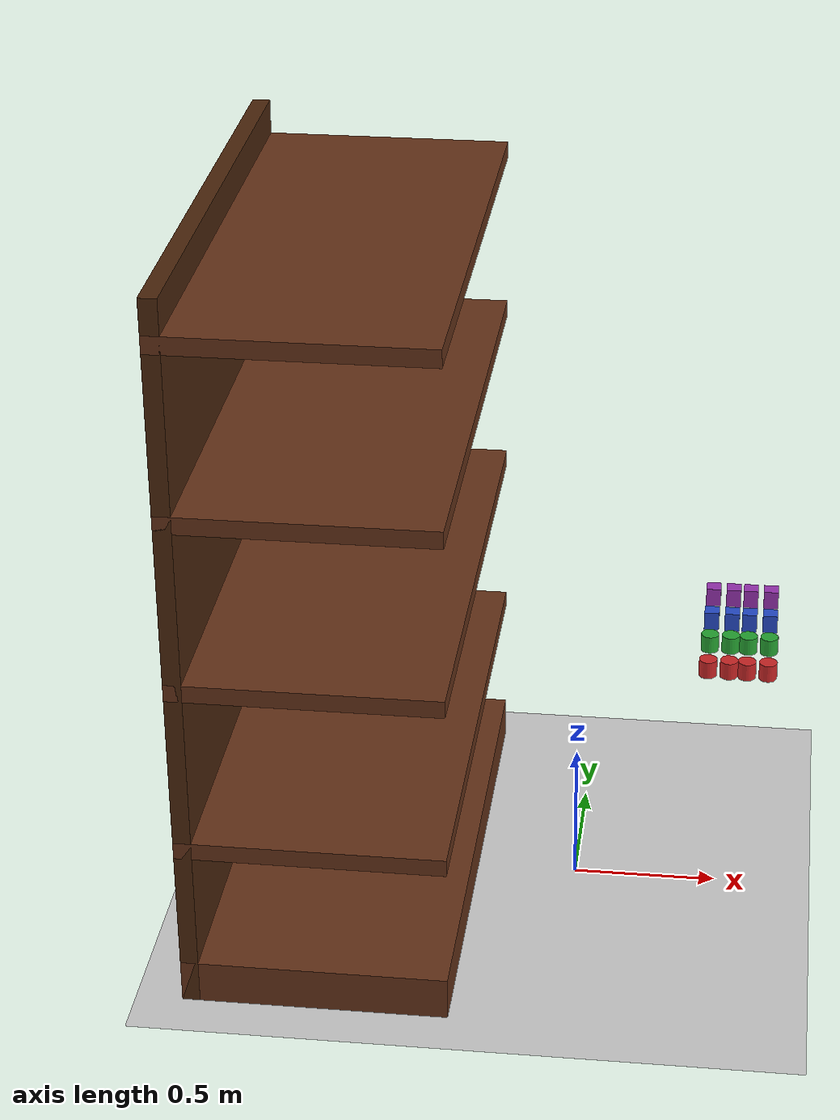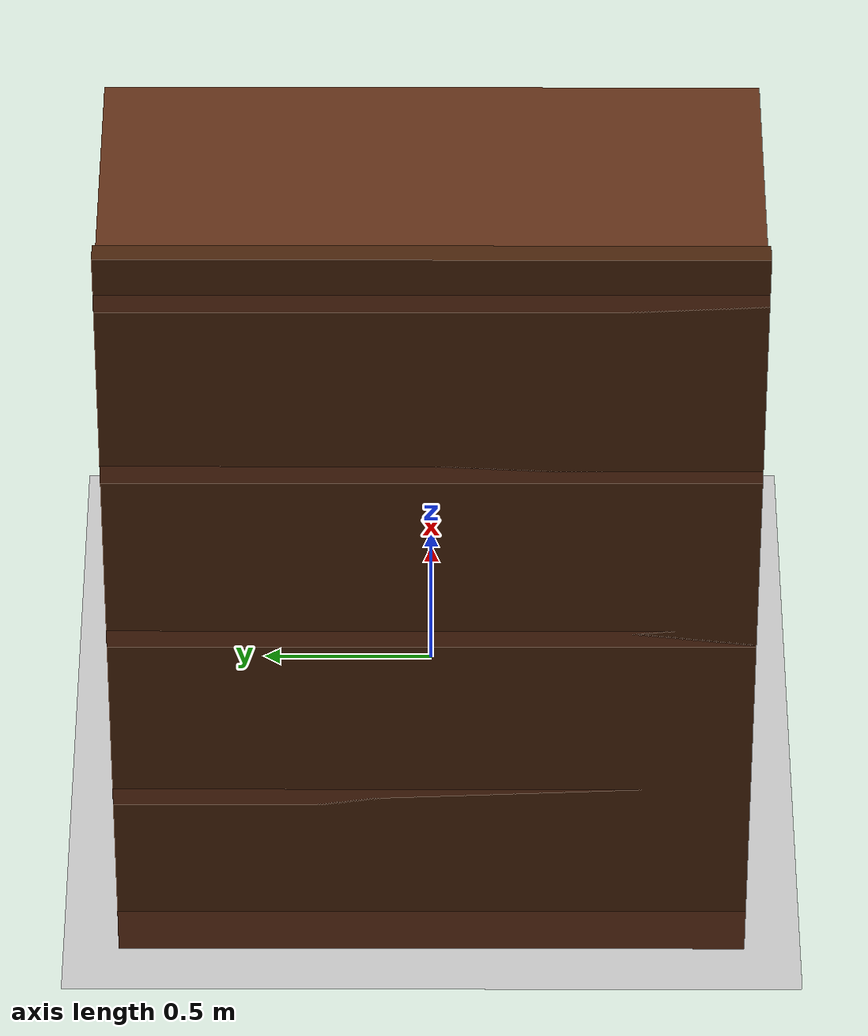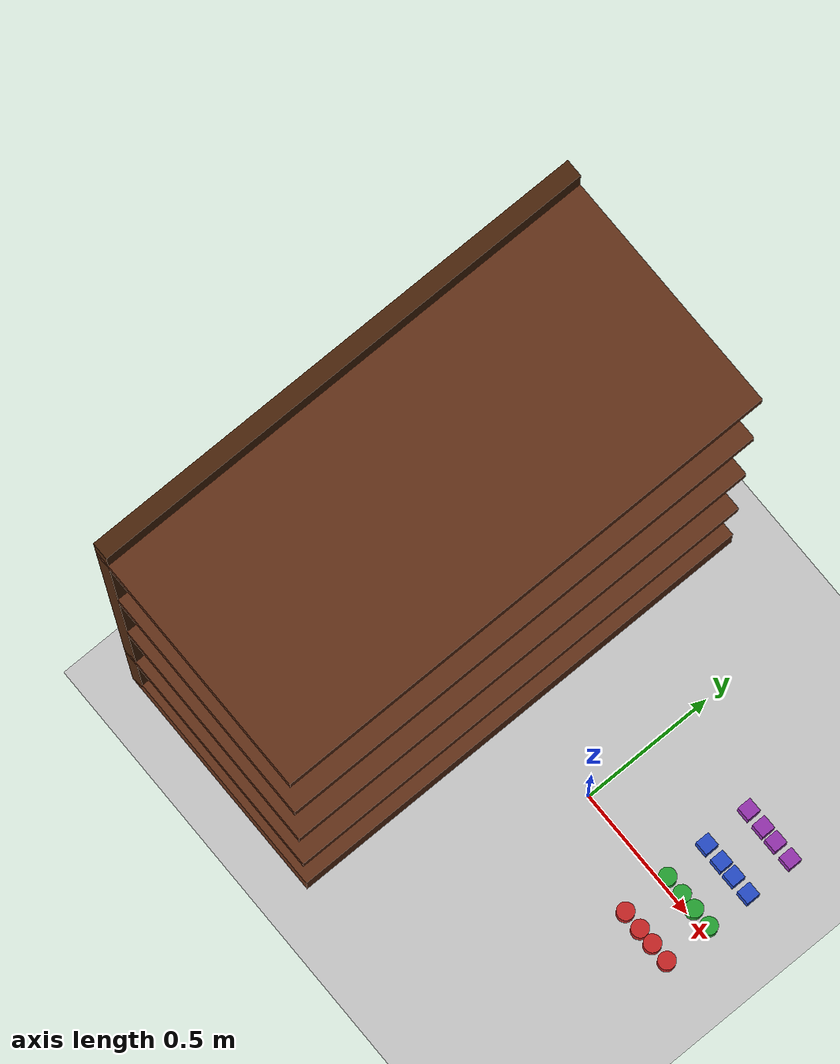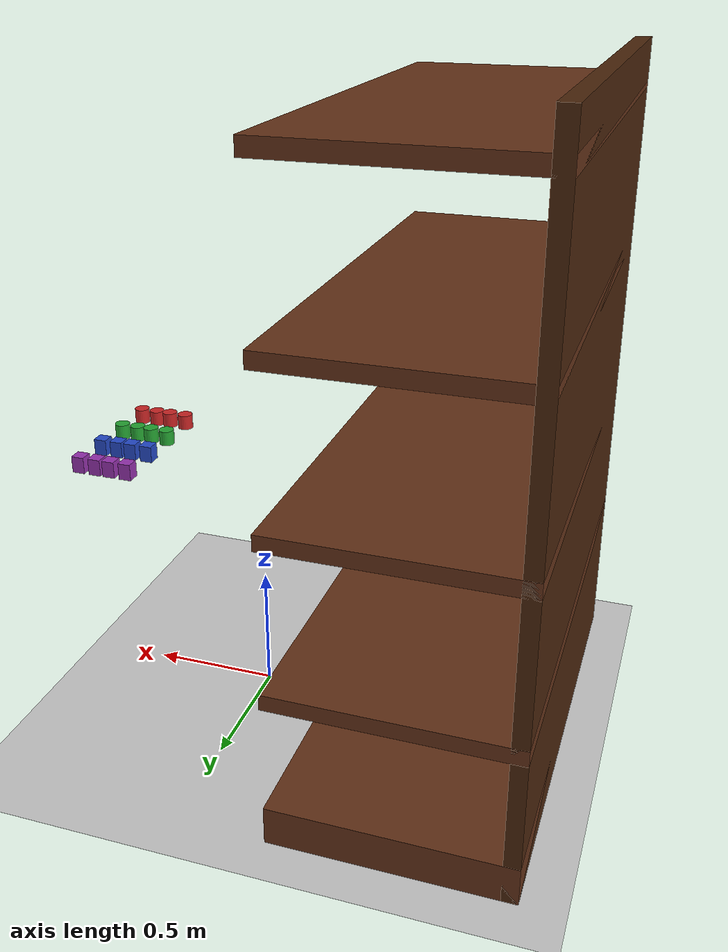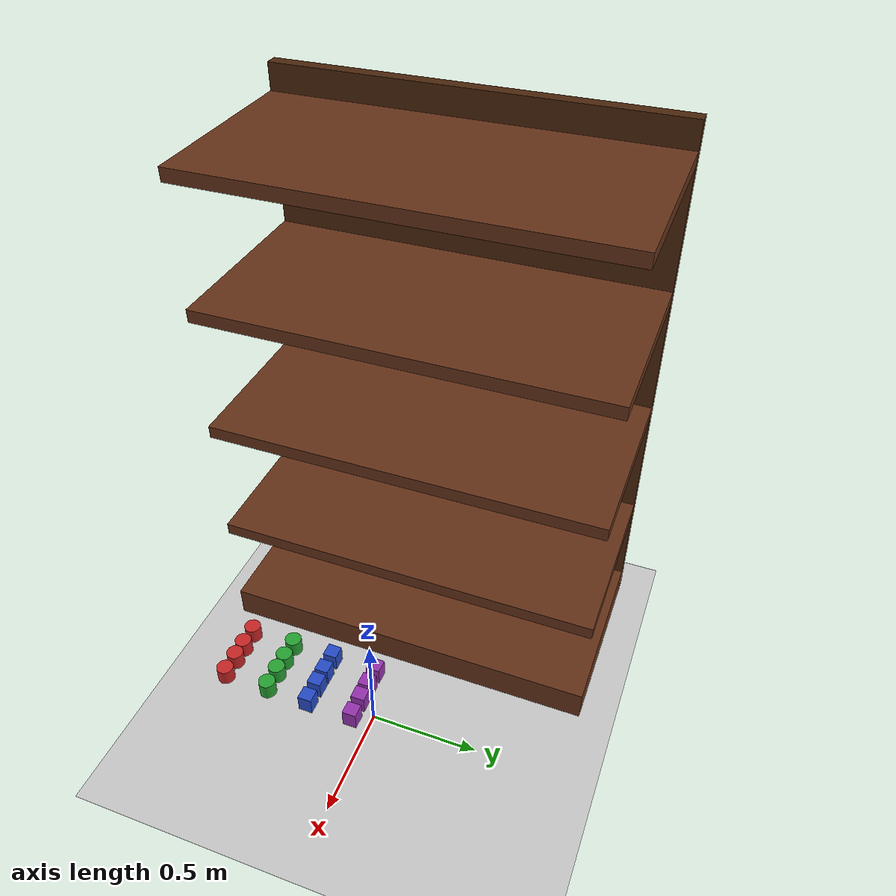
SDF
<sdf version="1.7">
 <world name="default">
  <light name="sun" type="directional">
   <pose>0 0 10 0 -0 0</pose>
   <diffuse>0.8 0.8 0.8 1</diffuse>
   <specular>0.2 0.2 0.2 1</specular>
   <attenuation>
    <range>1000</range>
    <constant>0.9</constant>
    <linear>0.01</linear>
    <quadratic>0.001</quadratic>
   </attenuation>
   <direction>-0.5 0.1 -0.9</direction>
  </light>
  <model name="ground_plane">
   <static>1</static>
   <link name="link">
    <collision name="collision">
     <geometry><plane><normal>0 0 1</normal><size>100 100</size></plane></geometry>
     <surface>
      <contact><collide_bitmask>65535</collide_bitmask></contact>
      <friction><ode><mu>100</mu><mu2>50</mu2></ode></friction>
     </surface>
    </collision>
    <visual name="visual">
     <cast_shadows>0</cast_shadows>
     <geometry><plane><normal>0 0 1</normal><size>100 100</size></plane></geometry>
     <material>
      <script><uri>file://media/materials/scripts/gazebo.material</uri><name>Gazebo/Grey</name></script>
     </material>
    </visual>
   </link>
  </model>
  <gravity>0 0 -9.8</gravity>
  <magnetic_field>6e-06 2.3e-05 -4.2e-05</magnetic_field>
  <atmosphere type="adiabatic"/>
  <physics name="default_physics" default="0" type="ode">
   <max_step_size>0.001</max_step_size>
   <real_time_factor>1</real_time_factor>
   <real_time_update_rate>1000</real_time_update_rate>
  </physics>
  <scene><ambient>0.4 0.4 0.4 1</ambient><background>0.7 0.7 0.7 1</background><shadows>1</shadows></scene>
  <spherical_coordinates>
   <surface_model>EARTH_WGS84</surface_model>
   <latitude_deg>0</latitude_deg>
   <longitude_deg>0</longitude_deg>
   <elevation>0</elevation>
   <heading_deg>0</heading_deg>
  </spherical_coordinates>
  <plugin name="gazebo_link_attacher" filename="libgazebo_link_attacher.so"/>
  <model name="red_cylinder_1">
   <link name="red_cylinder_1">
    <inertial>
     <mass>0.01</mass>
     <inertia><ixx>0</ixx><ixy>0</ixy><ixz>0</ixz><iyy>0</iyy><iyz>0</iyz><izz>0</izz></inertia>
    </inertial>
    <collision name="red_cylinder_1_collision">
     <geometry><cylinder><radius>0.03</radius><length>0.06</length></cylinder></geometry>
    </collision>
    <visual name="red_cylinder_1_visual">
     <geometry><cylinder><radius>0.03</radius><length>0.06</length></cylinder></geometry>
     <material>
      <script><name>Gazebo/Red</name><uri>file://media/materials/scripts/gazebo.material</uri></script>
     </material>
    </visual>
   </link>
   <pose>0.45 -0.25 1.03 0 -0 0</pose>
  </model>
  <model name="red_cylinder_2">
   <link name="red_cylinder_2">
    <inertial>
     <mass>0.01</mass>
     <inertia><ixx>0</ixx><ixy>0</ixy><ixz>0</ixz><iyy>0</iyy><iyz>0</iyz><izz>0</izz></inertia>
    </inertial>
    <collision name="red_cylinder_2_collision">
     <geometry><cylinder><radius>0.03</radius><length>0.06</length></cylinder></geometry>
    </collision>
    <visual name="red_cylinder_2_visual">
     <geometry><cylinder><radius>0.03</radius><length>0.06</length></cylinder></geometry>
     <material>
      <script><name>Gazebo/Red</name><uri>file://media/materials/scripts/gazebo.material</uri></script>
     </material>
    </visual>
   </link>
   <pose>0.52 -0.25 1.03 0 -0 0</pose>
  </model>
  <model name="red_cylinder_3">
   <link name="red_cylinder_3">
    <inertial>
     <mass>0.01</mass>
     <inertia><ixx>0</ixx><ixy>0</ixy><ixz>0</ixz><iyy>0</iyy><iyz>0</iyz><izz>0</izz></inertia>
    </inertial>
    <collision name="red_cylinder_3_collision">
     <geometry><cylinder><radius>0.03</radius><length>0.06</length></cylinder></geometry>
    </collision>
    <visual name="red_cylinder_3_visual">
     <geometry><cylinder><radius>0.03</radius><length>0.06</length></cylinder></geometry>
     <material>
      <script><name>Gazebo/Red</name><uri>file://media/materials/scripts/gazebo.material</uri></script>
     </material>
    </visual>
   </link>
   <pose>0.58 -0.25 1.03 0 -0 0</pose>
  </model>
  <model name="red_cylinder_4">
   <link name="red_cylinder_4">
    <inertial>
     <mass>0.01</mass>
     <inertia><ixx>0</ixx><ixy>0</ixy><ixz>0</ixz><iyy>0</iyy><iyz>0</iyz><izz>0</izz></inertia>
    </inertial>
    <collision name="red_cylinder_4_collision">
     <geometry><cylinder><radius>0.03</radius><length>0.06</length></cylinder></geometry>
    </collision>
    <visual name="red_cylinder_4_visual">
     <geometry><cylinder><radius>0.03</radius><length>0.06</length></cylinder></geometry>
     <material>
      <script><name>Gazebo/Red</name><uri>file://media/materials/scripts/gazebo.material</uri></script>
     </material>
    </visual>
   </link>
   <pose>0.65 -0.25 1.03 0 -0 0</pose>
  </model>
  <model name="green_cylinder_1">
   <link name="green_cylinder_1">
    <inertial>
     <mass>0.01</mass>
     <inertia><ixx>0</ixx><ixy>0</ixy><ixz>0</ixz><iyy>0</iyy><iyz>0</iyz><izz>0</izz></inertia>
    </inertial>
    <collision name="green_cylinder_1_collision">
     <geometry><cylinder><radius>0.03</radius><length>0.06</length></cylinder></geometry>
    </collision>
    <visual name="green_cylinder_1_visual">
     <geometry><cylinder><radius>0.03</radius><length>0.06</length></cylinder></geometry>
     <material>
      <script><name>Gazebo/Green</name><uri>file://media/materials/scripts/gazebo.material</uri></script>
     </material>
    </visual>
   </link>
   <pose>0.45 -0.08 1.03 0 -0 0</pose>
  </model>
  <model name="green_cylinder_2">
   <link name="green_cylinder_2">
    <inertial>
     <mass>0.01</mass>
     <inertia><ixx>0</ixx><ixy>0</ixy><ixz>0</ixz><iyy>0</iyy><iyz>0</iyz><izz>0</izz></inertia>
    </inertial>
    <collision name="green_cylinder_2_collision">
     <geometry><cylinder><radius>0.03</radius><length>0.06</length></cylinder></geometry>
    </collision>
    <visual name="green_cylinder_2_visual">
     <geometry><cylinder><radius>0.03</radius><length>0.06</length></cylinder></geometry>
     <material>
      <script><name>Gazebo/Green</name><uri>file://media/materials/scripts/gazebo.material</uri></script>
     </material>
    </visual>
   </link>
   <pose>0.58 -0.08 1.03 0 -0 0</pose>
  </model>
  <model name="green_cylinder_3">
   <link name="green_cylinder_3">
    <inertial>
     <mass>0.01</mass>
     <inertia><ixx>0</ixx><ixy>0</ixy><ixz>0</ixz><iyy>0</iyy><iyz>0</iyz><izz>0</izz></inertia>
    </inertial>
    <collision name="green_cylinder_3_collision">
     <geometry><cylinder><radius>0.03</radius><length>0.06</length></cylinder></geometry>
    </collision>
    <visual name="green_cylinder_3_visual">
     <geometry><cylinder><radius>0.03</radius><length>0.06</length></cylinder></geometry>
     <material>
      <script><name>Gazebo/Green</name><uri>file://media/materials/scripts/gazebo.material</uri></script>
     </material>
    </visual>
   </link>
   <pose>0.52 -0.08 1.03 0 -0 0</pose>
  </model>
  <model name="green_cylinder_4">
   <link name="green_cylinder_4">
    <inertial>
     <mass>0.01</mass>
     <inertia><ixx>0</ixx><ixy>0</ixy><ixz>0</ixz><iyy>0</iyy><iyz>0</iyz><izz>0</izz></inertia>
    </inertial>
    <collision name="green_cylinder_4_collision">
     <geometry><cylinder><radius>0.03</radius><length>0.06</length></cylinder></geometry>
    </collision>
    <visual name="green_cylinder_4_visual">
     <geometry><cylinder><radius>0.03</radius><length>0.06</length></cylinder></geometry>
     <material>
      <script><name>Gazebo/Green</name><uri>file://media/materials/scripts/gazebo.material</uri></script>
     </material>
    </visual>
   </link>
   <pose>0.65 -0.08 1.03 0 -0 0</pose>
  </model>
  <model name="blue_box_1">
   <link name="blue_box_1">
    <inertial>
     <mass>0.01</mass>
     <inertia><ixx>0</ixx><ixy>0</ixy><ixz>0</ixz><iyy>0</iyy><iyz>0</iyz><izz>0</izz></inertia>
    </inertial>
    <collision name="blue_box_1_collision">
     <geometry><box><size>0.05 0.05 0.0666</size></box></geometry>
    </collision>
    <visual name="blue_box_1_visual">
     <geometry><box><size>0.05 0.05 0.066</size></box></geometry>
     <material>
      <script><name>Gazebo/Blue</name><uri>file://media/materials/scripts/gazebo.material</uri></script>
     </material>
    </visual>
   </link>
   <pose>0.45 0.08 1.03 0 -0 0</pose>
  </model>
  <model name="blue_box_2">
   <link name="blue_box_2">
    <inertial>
     <mass>0.01</mass>
     <inertia><ixx>0</ixx><ixy>0</ixy><ixz>0</ixz><iyy>0</iyy><iyz>0</iyz><izz>0</izz></inertia>
    </inertial>
    <collision name="blue_box_2_collision">
     <geometry><box><size>0.05 0.05 0.0666</size></box></geometry>
    </collision>
    <visual name="blue_box_2_visual">
     <geometry><box><size>0.05 0.05 0.066</size></box></geometry>
     <material>
      <script><name>Gazebo/Blue</name><uri>file://media/materials/scripts/gazebo.material</uri></script>
     </material>
    </visual>
   </link>
   <pose>0.52 0.08 1.03 0 -0 0</pose>
  </model>
  <model name="blue_box_3">
   <link name="blue_box_3">
    <inertial>
     <mass>0.01</mass>
     <inertia><ixx>0</ixx><ixy>0</ixy><ixz>0</ixz><iyy>0</iyy><iyz>0</iyz><izz>0</izz></inertia>
    </inertial>
    <collision name="blue_box_3_collision">
     <geometry><box><size>0.05 0.05 0.0666</size></box></geometry>
    </collision>
    <visual name="blue_box_3_visual">
     <geometry><box><size>0.05 0.05 0.066</size></box></geometry>
     <material>
      <script><name>Gazebo/Blue</name><uri>file://media/materials/scripts/gazebo.material</uri></script>
     </material>
    </visual>
   </link>
   <pose>0.58 0.08 1.03 0 -0 0</pose>
  </model>
  <model name="blue_box_4">
   <link name="blue_box_4">
    <inertial>
     <mass>0.01</mass>
     <inertia><ixx>0</ixx><ixy>0</ixy><ixz>0</ixz><iyy>0</iyy><iyz>0</iyz><izz>0</izz></inertia>
    </inertial>
    <collision name="blue_box_4_collision">
     <geometry><box><size>0.05 0.05 0.0666</size></box></geometry>
    </collision>
    <visual name="blue_box_4_visual">
     <geometry><box><size>0.05 0.05 0.066</size></box></geometry>
     <material>
      <script><name>Gazebo/Blue</name><uri>file://media/materials/scripts/gazebo.material</uri></script>
     </material>
    </visual>
   </link>
   <pose>0.65 0.08 1.03 0 -0 0</pose>
  </model>
  <model name="purple_box_1">
   <link name="purple_box_1">
    <inertial>
     <mass>0.01</mass>
     <inertia><ixx>0</ixx><ixy>0</ixy><ixz>0</ixz><iyy>0</iyy><iyz>0</iyz><izz>0</izz></inertia>
    </inertial>
    <collision name="purple_box_1_collision">
     <geometry><box><size>0.05 0.05 0.0666</size></box></geometry>
    </collision>
    <visual name="purple_box_1_visual">
     <geometry><box><size>0.05 0.05 0.066</size></box></geometry>
     <material>
      <script><name>Gazebo/Purple</name><uri>file://media/materials/scripts/gazebo.material</uri></script>
     </material>
    </visual>
   </link>
   <pose>0.45 0.25 1.03 0 -0 0</pose>
  </model>
  <model name="purple_box_2">
   <link name="purple_box_2">
    <inertial>
     <mass>0.01</mass>
     <inertia><ixx>0</ixx><ixy>0</ixy><ixz>0</ixz><iyy>0</iyy><iyz>0</iyz><izz>0</izz></inertia>
    </inertial>
    <collision name="purple_box_2_collision">
     <geometry><box><size>0.05 0.05 0.0666</size></box></geometry>
    </collision>
    <visual name="purple_box_2_visual">
     <geometry><box><size>0.05 0.05 0.066</size></box></geometry>
     <material>
      <script><name>Gazebo/Purple</name><uri>file://media/materials/scripts/gazebo.material</uri></script>
     </material>
    </visual>
   </link>
   <pose>0.52 0.25 1.03 0 -0 0</pose>
  </model>
  <model name="purple_box_3">
   <link name="purple_box_3">
    <inertial>
     <mass>0.01</mass>
     <inertia><ixx>0</ixx><ixy>0</ixy><ixz>0</ixz><iyy>0</iyy><iyz>0</iyz><izz>0</izz></inertia>
    </inertial>
    <collision name="purple_box_3_collision">
     <geometry><box><size>0.05 0.05 0.0666</size></box></geometry>
    </collision>
    <visual name="purple_box_3_visual">
     <geometry><box><size>0.05 0.05 0.066</size></box></geometry>
     <material>
      <script><name>Gazebo/Purple</name><uri>file://media/materials/scripts/gazebo.material</uri></script>
     </material>
    </visual>
   </link>
   <pose>0.58 0.25 1.03 0 -0 0</pose>
  </model>
  <model name="purple_box_4">
   <link name="purple_box_4">
    <inertial>
     <mass>0.01</mass>
     <inertia><ixx>0</ixx><ixy>0</ixy><ixz>0</ixz><iyy>0</iyy><iyz>0</iyz><izz>0</izz></inertia>
    </inertial>
    <collision name="purple_box_4_collision">
     <geometry><box><size>0.05 0.05 0.0666</size></box></geometry>
    </collision>
    <visual name="purple_box_4_visual">
     <geometry><box><size>0.05 0.05 0.066</size></box></geometry>
     <material>
      <script><name>Gazebo/Purple</name><uri>file://media/materials/scripts/gazebo.material</uri></script>
     </material>
    </visual>
   </link>
   <pose>0.65 0.25 1.03 0 -0 0</pose>
  </model>
  <model name="bookshelf">
   <pose>-0.8 0.0 0.0 0 0 1.57</pose>
   <static>1</static>
   <link name="base">
    <collision name="base_collision">
     <geometry><box><size>1.8 0.9 0.15</size></box></geometry>
     <pose>0.0 0.0 0.075 0 0 0</pose>
    </collision>
    <visual name="base_visual">
     <geometry><box><size>1.8 0.9 0.15</size></box></geometry>
     <material><ambient>0.4 0.2 0.1 1</ambient><diffuse>0.4 0.2 0.1 1</diffuse></material>
     <pose>0.0 0.0 0.075 0 0 0</pose>
    </visual>
   </link>
   <link name="shelf1">
    <collision name="shelf1_collision">
     <geometry><box><size>1.8 0.9 0.06</size></box></geometry>
     <pose>0.0 0.0 0.6 0 0 0</pose>
    </collision>
    <visual name="shelf1_visual">
     <geometry><box><size>1.8 0.9 0.06</size></box></geometry>
     <material><ambient>0.4 0.2 0.1 1</ambient><diffuse>0.4 0.2 0.1 1</diffuse></material>
     <pose>0.0 0.0 0.6 0 0 0</pose>
    </visual>
   </link>
   <joint name="shelf1_joint" type="fixed"><parent>base</parent><child>shelf1</child></joint>
   <link name="shelf2">
    <collision name="shelf2_collision">
     <geometry><box><size>1.8 0.9 0.06</size></box></geometry>
     <pose>0.0 0.0 1.2 0 0 0</pose>
    </collision>
    <visual name="shelf2_visual">
     <geometry><box><size>1.8 0.9 0.06</size></box></geometry>
     <material><ambient>0.4 0.2 0.1 1</ambient><diffuse>0.4 0.2 0.1 1</diffuse></material>
     <pose>0.0 0.0 1.2 0 0 0</pose>
    </visual>
   </link>
   <joint name="shelf2_joint" type="fixed"><parent>base</parent><child>shelf2</child></joint>
   <link name="shelf3">
    <collision name="shelf3_collision">
     <geometry><box><size>1.8 0.9 0.06</size></box></geometry>
     <pose>0.0 0.0 1.8 0 0 0</pose>
    </collision>
    <visual name="shelf3_visual">
     <geometry><box><size>1.8 0.9 0.06</size></box></geometry>
     <material><ambient>0.4 0.2 0.1 1</ambient><diffuse>0.4 0.2 0.1 1</diffuse></material>
     <pose>0.0 0.0 1.8 0 0 0</pose>
    </visual>
   </link>
   <joint name="shelf3_joint" type="fixed"><parent>base</parent><child>shelf3</child></joint>
   <link name="shelf4">
    <collision name="shelf4_collision">
     <geometry><box><size>1.8 0.9 0.06</size></box></geometry>
     <pose>0.0 0.0 2.4 0 0 0</pose>
    </collision>
    <visual name="shelf4_visual">
     <geometry><box><size>1.8 0.9 0.06</size></box></geometry>
     <material><ambient>0.4 0.2 0.1 1</ambient><diffuse>0.4 0.2 0.1 1</diffuse></material>
     <pose>0.0 0.0 2.4 0 0 0</pose>
    </visual>
   </link>
   <joint name="shelf4_joint" type="fixed"><parent>base</parent><child>shelf4</child></joint>
   <link name="back">
    <collision name="back_collision">
     <geometry><box><size>1.8 0.06 2.55</size></box></geometry>
     <pose>0.0 0.42 1.275 0 0 0</pose>
    </collision>
    <visual name="back_visual">
     <geometry><box><size>1.8 0.06 2.55</size></box></geometry>
     <material><ambient>0.3 0.15 0.05 1</ambient><diffuse>0.3 0.15 0.05 1</diffuse></material>
     <pose>0.0 0.42 1.275 0 0 0</pose>
    </visual>
   </link>
   <joint name="back_joint" type="fixed"><parent>base</parent><child>back</child></joint>
  </model>
 </world>
</sdf>
